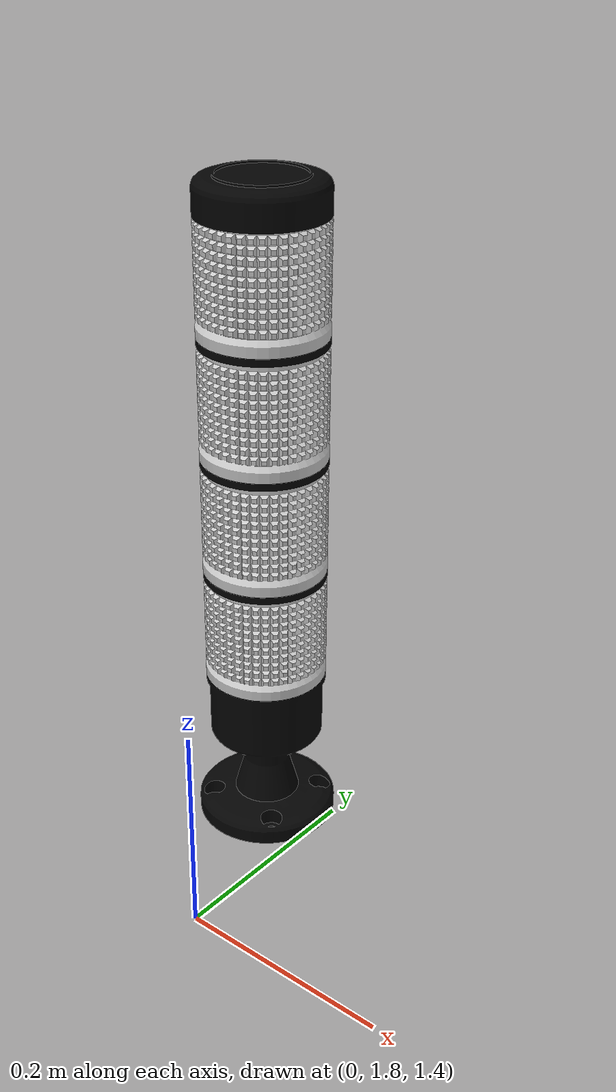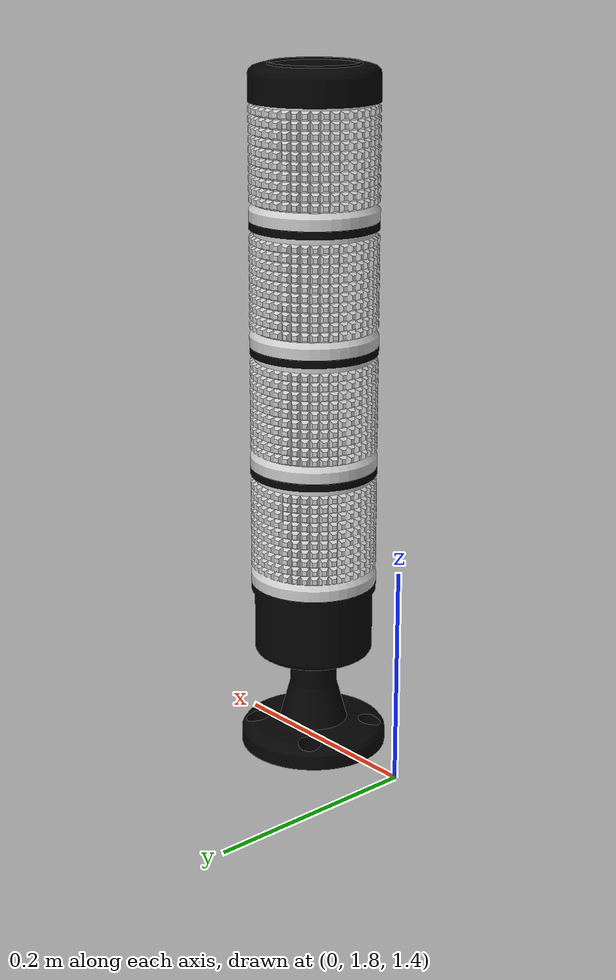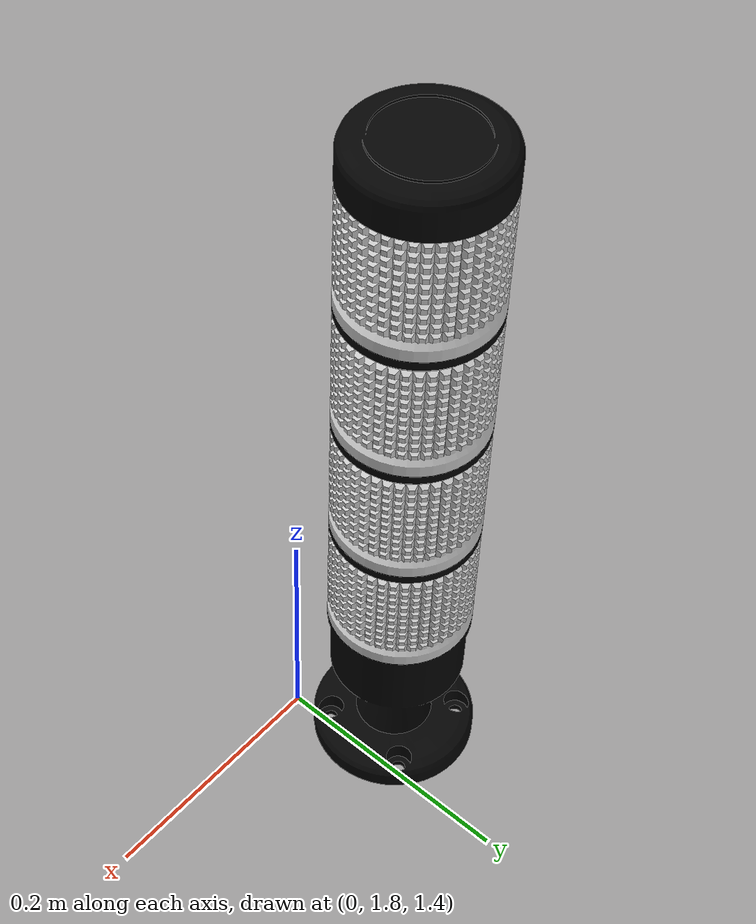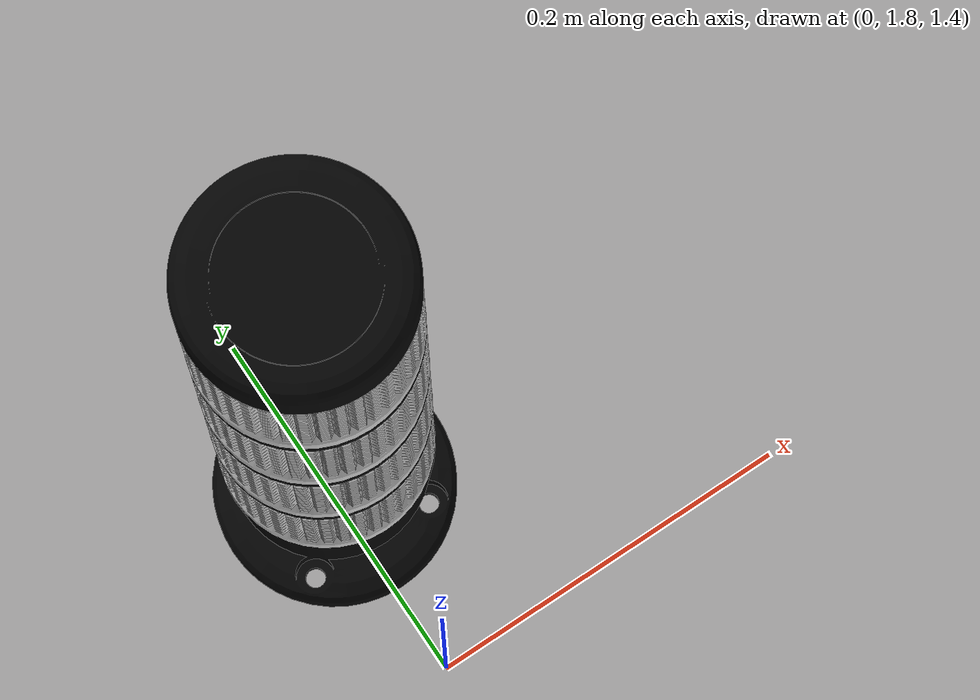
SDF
<?xml version='1.0'?>
<sdf version='1.6'>
  <model name='Stack Lights'>
    <static>true</static>
    <link name="link">
      <pose>0 1.9 0 0 0 0</pose>
      <visual name="visual">
            <geometry>
                <mesh>
                  <scale>1 1 1</scale>
                  <uri>model://stacklight_factory/meshes/stacklights.dae</uri>
                </mesh>
            </geometry>
        </visual>

    </link>
  </model>
</sdf>
